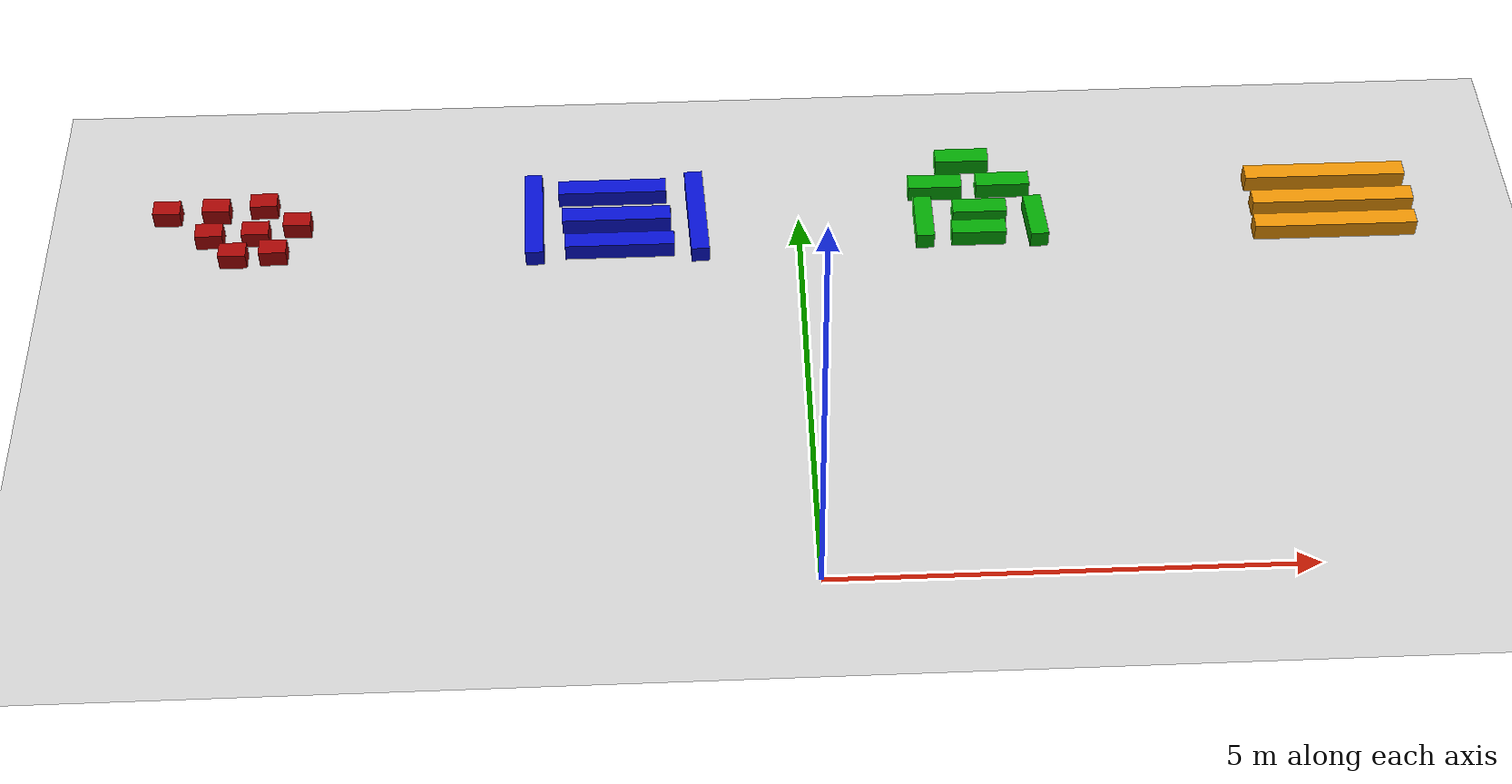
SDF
<sdf version="1.6">
 <world name="default">
  <light name="sun" type="directional">
   <pose>0 0 10 0 -0 0</pose>
   <diffuse>0.8 0.8 0.8 1</diffuse>
   <specular>0.2 0.2 0.2 1</specular>
   <attenuation>
    <range>1000</range>
    <constant>0.9</constant>
    <linear>0.01</linear>
    <quadratic>0.001</quadratic>
   </attenuation>
   <direction>-0.1 0.5 -0.9</direction>
  </light>
  <model name="ground_plane">
   <static>1</static>
   <link name="link">
    <collision name="collision">
     <geometry><plane><normal>0 0 1</normal><size>100 100</size></plane></geometry>
     <surface>
      <contact><collide_bitmask>65535</collide_bitmask></contact>
      <friction><ode><mu>100</mu><mu2>50</mu2></ode></friction>
     </surface>
    </collision>
    <visual name="visual">
     <cast_shadows>0</cast_shadows>
     <geometry><plane><normal>0 0 1</normal><size>100 100</size></plane></geometry>
     <material>
      <script><uri>file://media/materials/scripts/gazebo.material</uri><name>Gazebo/Grey</name></script>
     </material>
    </visual>
   </link>
  </model>
  <gravity>0 0 -9.8</gravity>
  <magnetic_field>6e-06 2.3e-05 -4.2e-05</magnetic_field>
  <atmosphere type="adiabatic"/>
  <physics name="default_physics" default="0" type="ode">
   <max_step_size>0.001</max_step_size>
   <real_time_factor>1</real_time_factor>
   <real_time_update_rate>1000</real_time_update_rate>
  </physics>
  <scene><ambient>0.4 0.4 0.4 1</ambient><background>0.7 0.7 0.7 1</background><shadows>1</shadows></scene>
  <audio><device>default</device></audio>
  <spherical_coordinates>
   <surface_model>EARTH_WGS84</surface_model>
   <latitude_deg>0</latitude_deg>
   <longitude_deg>0</longitude_deg>
   <elevation>0</elevation>
   <heading_deg>0</heading_deg>
  </spherical_coordinates>
  <model name="orange_box">
   <link name="link">
    <inertial>
     <mass>1</mass>
     <inertia><ixx>0.00048</ixx><ixy>0</ixy><ixz>0</ixz><iyy>0.01968</iyy><iyz>0</iyz><izz>0.01968</izz></inertia>
    </inertial>
    <collision name="collision">
     <geometry><mesh><uri>model://larics_gazebo_worlds/models/mbzirc/brick_orange.dae</uri></mesh></geometry>
     <surface><friction><ode><mu>100</mu><mu2>50</mu2></ode></friction></surface>
    </collision>
    <visual name="visual">
     <geometry><mesh><uri>model://larics_gazebo_worlds/models/mbzirc/brick_orange.dae</uri></mesh></geometry>
    </visual>
   </link>
   <pose>5.9679 4.96171 0.1 1.2e-05 -0 -0.001311</pose>
  </model>
  <model name="red_box">
   <link name="link">
    <inertial>
     <mass>0.35</mass>
     <inertia><ixx>8e-05</ixx><ixy>0</ixy><ixz>0</ixz><iyy>0.00013</iyy><iyz>0</iyz><izz>0.00013</izz></inertia>
    </inertial>
    <collision name="collision">
     <geometry><mesh><uri>model://larics_gazebo_worlds/models/mbzirc/brick_red.dae</uri></mesh></geometry>
     <surface><friction><ode><mu>100</mu><mu2>50</mu2></ode></friction></surface>
    </collision>
    <visual name="visual">
     <geometry><mesh><uri>model://larics_gazebo_worlds/models/mbzirc/brick_red.dae</uri></mesh></geometry>
    </visual>
   </link>
   <pose>-6.0172 4.94721 0.099997 4e-06 1.1e-05 -0.00092</pose>
  </model>
  <model name="red_box_0">
   <link name="link">
    <inertial>
     <mass>0.35</mass>
     <inertia><ixx>8e-05</ixx><ixy>0</ixy><ixz>0</ixz><iyy>0.00013</iyy><iyz>0</iyz><izz>0.00013</izz></inertia>
    </inertial>
    <collision name="collision">
     <geometry><mesh><uri>model://larics_gazebo_worlds/models/mbzirc/brick_red.dae</uri></mesh></geometry>
     <surface><friction><ode><mu>100</mu><mu2>50</mu2></ode></friction></surface>
    </collision>
    <visual name="visual">
     <geometry><mesh><uri>model://larics_gazebo_worlds/models/mbzirc/brick_red.dae</uri></mesh></geometry>
    </visual>
   </link>
   <pose>-6.5266 4.93634 0.099997 4e-06 1.1e-05 -0.001056</pose>
  </model>
  <model name="red_box_1">
   <link name="link">
    <inertial>
     <mass>0.35</mass>
     <inertia><ixx>8e-05</ixx><ixy>0</ixy><ixz>0</ixz><iyy>0.00013</iyy><iyz>0</iyz><izz>0.00013</izz></inertia>
    </inertial>
    <collision name="collision">
     <geometry><mesh><uri>model://larics_gazebo_worlds/models/mbzirc/brick_red.dae</uri></mesh></geometry>
     <surface><friction><ode><mu>100</mu><mu2>50</mu2></ode></friction></surface>
    </collision>
    <visual name="visual">
     <geometry><mesh><uri>model://larics_gazebo_worlds/models/mbzirc/brick_red.dae</uri></mesh></geometry>
    </visual>
   </link>
   <pose>-6.24347 4.62732 0.1 -3e-06 5e-06 -0.001328</pose>
  </model>
  <model name="red_box_2">
   <link name="link">
    <inertial>
     <mass>0.35</mass>
     <inertia><ixx>8e-05</ixx><ixy>0</ixy><ixz>0</ixz><iyy>0.00013</iyy><iyz>0</iyz><izz>0.00013</izz></inertia>
    </inertial>
    <collision name="collision">
     <geometry><mesh><uri>model://larics_gazebo_worlds/models/mbzirc/brick_red.dae</uri></mesh></geometry>
     <surface><friction><ode><mu>100</mu><mu2>50</mu2></ode></friction></surface>
    </collision>
    <visual name="visual">
     <geometry><mesh><uri>model://larics_gazebo_worlds/models/mbzirc/brick_red.dae</uri></mesh></geometry>
    </visual>
   </link>
   <pose>-5.80266 4.65583 0.099997 4e-06 1.1e-05 -0.001028</pose>
  </model>
  <model name="red_box_3">
   <link name="link">
    <inertial>
     <mass>0.35</mass>
     <inertia><ixx>8e-05</ixx><ixy>0</ixy><ixz>0</ixz><iyy>0.00013</iyy><iyz>0</iyz><izz>0.00013</izz></inertia>
    </inertial>
    <collision name="collision">
     <geometry><mesh><uri>model://larics_gazebo_worlds/models/mbzirc/brick_red.dae</uri></mesh></geometry>
     <surface><friction><ode><mu>100</mu><mu2>50</mu2></ode></friction></surface>
    </collision>
    <visual name="visual">
     <geometry><mesh><uri>model://larics_gazebo_worlds/models/mbzirc/brick_red.dae</uri></mesh></geometry>
    </visual>
   </link>
   <pose>-6.48374 5.32023 0.1 -7e-06 -0 -0.000409</pose>
  </model>
  <model name="red_box_4">
   <link name="link">
    <inertial>
     <mass>0.35</mass>
     <inertia><ixx>8e-05</ixx><ixy>0</ixy><ixz>0</ixz><iyy>0.00013</iyy><iyz>0</iyz><izz>0.00013</izz></inertia>
    </inertial>
    <collision name="collision">
     <geometry><mesh><uri>model://larics_gazebo_worlds/models/mbzirc/brick_red.dae</uri></mesh></geometry>
     <surface><friction><ode><mu>100</mu><mu2>50</mu2></ode></friction></surface>
    </collision>
    <visual name="visual">
     <geometry><mesh><uri>model://larics_gazebo_worlds/models/mbzirc/brick_red.dae</uri></mesh></geometry>
    </visual>
   </link>
   <pose>-5.95848 5.37821 0.099997 4e-06 1.1e-05 -0.000965</pose>
  </model>
  <model name="red_box_5">
   <link name="link">
    <inertial>
     <mass>0.35</mass>
     <inertia><ixx>8e-05</ixx><ixy>0</ixy><ixz>0</ixz><iyy>0.00013</iyy><iyz>0</iyz><izz>0.00013</izz></inertia>
    </inertial>
    <collision name="collision">
     <geometry><mesh><uri>model://larics_gazebo_worlds/models/mbzirc/brick_red.dae</uri></mesh></geometry>
     <surface><friction><ode><mu>100</mu><mu2>50</mu2></ode></friction></surface>
    </collision>
    <visual name="visual">
     <geometry><mesh><uri>model://larics_gazebo_worlds/models/mbzirc/brick_red.dae</uri></mesh></geometry>
    </visual>
   </link>
   <pose>-5.56552 5.06915 0.1 -7e-06 0 -0.001114</pose>
  </model>
  <model name="red_box_6">
   <link name="link">
    <inertial>
     <mass>0.35</mass>
     <inertia><ixx>8e-05</ixx><ixy>0</ixy><ixz>0</ixz><iyy>0.00013</iyy><iyz>0</iyz><izz>0.00013</izz></inertia>
    </inertial>
    <collision name="collision">
     <geometry><mesh><uri>model://larics_gazebo_worlds/models/mbzirc/brick_red.dae</uri></mesh></geometry>
     <surface><friction><ode><mu>100</mu><mu2>50</mu2></ode></friction></surface>
    </collision>
    <visual name="visual">
     <geometry><mesh><uri>model://larics_gazebo_worlds/models/mbzirc/brick_red.dae</uri></mesh></geometry>
    </visual>
   </link>
   <pose>-7.02717 5.30348 0.099996 -3e-06 -7e-06 -0.001188</pose>
  </model>
  <model name="orange_box_0">
   <link name="link">
    <inertial>
     <mass>1</mass>
     <inertia><ixx>0.00048</ixx><ixy>0</ixy><ixz>0</ixz><iyy>0.01968</iyy><iyz>0</iyz><izz>0.01968</izz></inertia>
    </inertial>
    <collision name="collision">
     <geometry><mesh><uri>model://larics_gazebo_worlds/models/mbzirc/brick_orange.dae</uri></mesh></geometry>
     <surface><friction><ode><mu>100</mu><mu2>50</mu2></ode></friction></surface>
    </collision>
    <visual name="visual">
     <geometry><mesh><uri>model://larics_gazebo_worlds/models/mbzirc/brick_orange.dae</uri></mesh></geometry>
    </visual>
   </link>
   <pose>5.94235 5.35621 0.099996 -2.4e-05 -0 -0.001061</pose>
  </model>
  <model name="orange_box_1">
   <link name="link">
    <inertial>
     <mass>1</mass>
     <inertia><ixx>0.00048</ixx><ixy>0</ixy><ixz>0</ixz><iyy>0.01968</iyy><iyz>0</iyz><izz>0.01968</izz></inertia>
    </inertial>
    <collision name="collision">
     <geometry><mesh><uri>model://larics_gazebo_worlds/models/mbzirc/brick_orange.dae</uri></mesh></geometry>
     <surface><friction><ode><mu>100</mu><mu2>50</mu2></ode></friction></surface>
    </collision>
    <visual name="visual">
     <geometry><mesh><uri>model://larics_gazebo_worlds/models/mbzirc/brick_orange.dae</uri></mesh></geometry>
    </visual>
   </link>
   <pose>5.93579 4.59072 0.1 -1.2e-05 -0 -0.001042</pose>
  </model>
  <model name="orange_box_2">
   <link name="link">
    <inertial>
     <mass>1</mass>
     <inertia><ixx>0.00048</ixx><ixy>0</ixy><ixz>0</ixz><iyy>0.01968</iyy><iyz>0</iyz><izz>0.01968</izz></inertia>
    </inertial>
    <collision name="collision">
     <geometry><mesh><uri>model://larics_gazebo_worlds/models/mbzirc/brick_green.dae</uri></mesh></geometry>
     <surface><friction><ode><mu>100</mu><mu2>50</mu2></ode></friction></surface>
    </collision>
    <visual name="visual">
     <geometry><mesh><uri>model://larics_gazebo_worlds/models/mbzirc/brick_green.dae</uri></mesh></geometry>
    </visual>
   </link>
   <pose>2.00852 4.96024 0.099997 3e-05 -0 0.002216</pose>
  </model>
  <model name="orange_box_3">
   <link name="link">
    <inertial>
     <mass>1</mass>
     <inertia><ixx>0.00048</ixx><ixy>0</ixy><ixz>0</ixz><iyy>0.01968</iyy><iyz>0</iyz><izz>0.01968</izz></inertia>
    </inertial>
    <collision name="collision">
     <geometry><mesh><uri>model://larics_gazebo_worlds/models/mbzirc/brick_green.dae</uri></mesh></geometry>
     <surface><friction><ode><mu>100</mu><mu2>50</mu2></ode></friction></surface>
    </collision>
    <visual name="visual">
     <geometry><mesh><uri>model://larics_gazebo_worlds/models/mbzirc/brick_green.dae</uri></mesh></geometry>
    </visual>
   </link>
   <pose>1.54131 5.35641 0.1 7e-06 -0 0.002174</pose>
  </model>
  <model name="orange_box_4">
   <link name="link">
    <inertial>
     <mass>1</mass>
     <inertia><ixx>0.00048</ixx><ixy>0</ixy><ixz>0</ixz><iyy>0.01968</iyy><iyz>0</iyz><izz>0.01968</izz></inertia>
    </inertial>
    <collision name="collision">
     <geometry><mesh><uri>model://larics_gazebo_worlds/models/mbzirc/brick_green.dae</uri></mesh></geometry>
     <surface><friction><ode><mu>100</mu><mu2>50</mu2></ode></friction></surface>
    </collision>
    <visual name="visual">
     <geometry><mesh><uri>model://larics_gazebo_worlds/models/mbzirc/brick_green.dae</uri></mesh></geometry>
    </visual>
   </link>
   <pose>2.30168 5.37018 0.099997 3e-05 -0 0.001741</pose>
  </model>
  <model name="orange_box_5">
   <link name="link">
    <inertial>
     <mass>1</mass>
     <inertia><ixx>0.00048</ixx><ixy>0</ixy><ixz>0</ixz><iyy>0.01968</iyy><iyz>0</iyz><izz>0.01968</izz></inertia>
    </inertial>
    <collision name="collision">
     <geometry><mesh><uri>model://larics_gazebo_worlds/models/mbzirc/brick_green.dae</uri></mesh></geometry>
     <surface><friction><ode><mu>100</mu><mu2>50</mu2></ode></friction></surface>
    </collision>
    <visual name="visual">
     <geometry><mesh><uri>model://larics_gazebo_worlds/models/mbzirc/brick_green.dae</uri></mesh></geometry>
    </visual>
   </link>
   <pose>2.62368 4.79151 0.1 -1e-05 -1e-06 1.63289</pose>
  </model>
  <model name="orange_box_6">
   <link name="link">
    <inertial>
     <mass>1</mass>
     <inertia><ixx>0.00048</ixx><ixy>0</ixy><ixz>0</ixz><iyy>0.01968</iyy><iyz>0</iyz><izz>0.01968</izz></inertia>
    </inertial>
    <collision name="collision">
     <geometry><mesh><uri>model://larics_gazebo_worlds/models/mbzirc/brick_green.dae</uri></mesh></geometry>
     <surface><friction><ode><mu>100</mu><mu2>50</mu2></ode></friction></surface>
    </collision>
    <visual name="visual">
     <geometry><mesh><uri>model://larics_gazebo_worlds/models/mbzirc/brick_green.dae</uri></mesh></geometry>
    </visual>
   </link>
   <pose>1.37977 4.82027 0.1 -1.3e-05 -1e-06 -1.57265</pose>
  </model>
  <model name="orange_box_7">
   <link name="link">
    <inertial>
     <mass>1</mass>
     <inertia><ixx>0.00048</ixx><ixy>0</ixy><ixz>0</ixz><iyy>0.01968</iyy><iyz>0</iyz><izz>0.01968</izz></inertia>
    </inertial>
    <collision name="collision">
     <geometry><mesh><uri>model://larics_gazebo_worlds/models/mbzirc/brick_green.dae</uri></mesh></geometry>
     <surface><friction><ode><mu>100</mu><mu2>50</mu2></ode></friction></surface>
    </collision>
    <visual name="visual">
     <geometry><mesh><uri>model://larics_gazebo_worlds/models/mbzirc/brick_green.dae</uri></mesh></geometry>
    </visual>
   </link>
   <pose>1.97508 4.63942 0.1 7e-06 -0 0.001532</pose>
  </model>
  <model name="orange_box_8">
   <link name="link">
    <inertial>
     <mass>1</mass>
     <inertia><ixx>0.00048</ixx><ixy>0</ixy><ixz>0</ixz><iyy>0.01968</iyy><iyz>0</iyz><izz>0.01968</izz></inertia>
    </inertial>
    <collision name="collision">
     <geometry><mesh><uri>model://larics_gazebo_worlds/models/mbzirc/brick_green.dae</uri></mesh></geometry>
     <surface><friction><ode><mu>100</mu><mu2>50</mu2></ode></friction></surface>
    </collision>
    <visual name="visual">
     <geometry><mesh><uri>model://larics_gazebo_worlds/models/mbzirc/brick_green.dae</uri></mesh></geometry>
    </visual>
   </link>
   <pose>1.87567 5.762 0.1 7e-06 0 0.001365</pose>
  </model>
  <model name="blue_box">
   <link name="link">
    <inertial>
     <mass>0.75</mass>
     <inertia><ixx>0.00032</ixx><ixy>0</ixy><ixz>0</ixz><iyy>0.00592</iyy><iyz>0</iyz><izz>0.00592</izz></inertia>
    </inertial>
    <collision name="collision">
     <geometry><mesh><uri>model://larics_gazebo_worlds/models/mbzirc/brick_blue.dae</uri></mesh></geometry>
     <surface><friction><ode><mu>100</mu><mu2>50</mu2></ode></friction></surface>
    </collision>
    <visual name="visual">
     <geometry><mesh><uri>model://larics_gazebo_worlds/models/mbzirc/brick_blue.dae</uri></mesh></geometry>
    </visual>
   </link>
   <pose>-1.99241 4.61153 0.1 -1.1e-05 -0 -0.000718</pose>
  </model>
  <model name="blue_box_0">
   <link name="link">
    <inertial>
     <mass>0.75</mass>
     <inertia><ixx>0.00032</ixx><ixy>0</ixy><ixz>0</ixz><iyy>0.00592</iyy><iyz>0</iyz><izz>0.00592</izz></inertia>
    </inertial>
    <collision name="collision">
     <geometry><mesh><uri>model://larics_gazebo_worlds/models/mbzirc/brick_blue.dae</uri></mesh></geometry>
     <surface><friction><ode><mu>100</mu><mu2>50</mu2></ode></friction></surface>
    </collision>
    <visual name="visual">
     <geometry><mesh><uri>model://larics_gazebo_worlds/models/mbzirc/brick_blue.dae</uri></mesh></geometry>
    </visual>
   </link>
   <pose>-2.02755 5.00485 0.1 -1.1e-05 -0 -0.000672</pose>
  </model>
  <model name="blue_box_1">
   <link name="link">
    <inertial>
     <mass>0.75</mass>
     <inertia><ixx>0.00032</ixx><ixy>0</ixy><ixz>0</ixz><iyy>0.00592</iyy><iyz>0</iyz><izz>0.00592</izz></inertia>
    </inertial>
    <collision name="collision">
     <geometry><mesh><uri>model://larics_gazebo_worlds/models/mbzirc/brick_blue.dae</uri></mesh></geometry>
     <surface><friction><ode><mu>100</mu><mu2>50</mu2></ode></friction></surface>
    </collision>
    <visual name="visual">
     <geometry><mesh><uri>model://larics_gazebo_worlds/models/mbzirc/brick_blue.dae</uri></mesh></geometry>
    </visual>
   </link>
   <pose>-2.07707 5.43212 0.099996 -2.1e-05 -0 -0.000628</pose>
  </model>
  <model name="blue_box_2">
   <link name="link">
    <inertial>
     <mass>0.75</mass>
     <inertia><ixx>0.00032</ixx><ixy>0</ixy><ixz>0</ixz><iyy>0.00592</iyy><iyz>0</iyz><izz>0.00592</izz></inertia>
    </inertial>
    <collision name="collision">
     <geometry><mesh><uri>model://larics_gazebo_worlds/models/mbzirc/brick_blue.dae</uri></mesh></geometry>
     <surface><friction><ode><mu>100</mu><mu2>50</mu2></ode></friction></surface>
    </collision>
    <visual name="visual">
     <geometry><mesh><uri>model://larics_gazebo_worlds/models/mbzirc/brick_blue.dae</uri></mesh></geometry>
    </visual>
   </link>
   <pose>-1.13648 5.02499 0.1 3e-06 0 1.62254</pose>
  </model>
  <model name="blue_box_3">
   <link name="link">
    <inertial>
     <mass>0.75</mass>
     <inertia><ixx>0.00032</ixx><ixy>0</ixy><ixz>0</ixz><iyy>0.00592</iyy><iyz>0</iyz><izz>0.00592</izz></inertia>
    </inertial>
    <collision name="collision">
     <geometry><mesh><uri>model://larics_gazebo_worlds/models/mbzirc/brick_blue.dae</uri></mesh></geometry>
     <surface><friction><ode><mu>100</mu><mu2>50</mu2></ode></friction></surface>
    </collision>
    <visual name="visual">
     <geometry><mesh><uri>model://larics_gazebo_worlds/models/mbzirc/brick_blue.dae</uri></mesh></geometry>
    </visual>
   </link>
   <pose>-2.94431 5.04165 0.099996 -2.1e-05 -0 -1.54295</pose>
  </model>
 </world>
</sdf>
